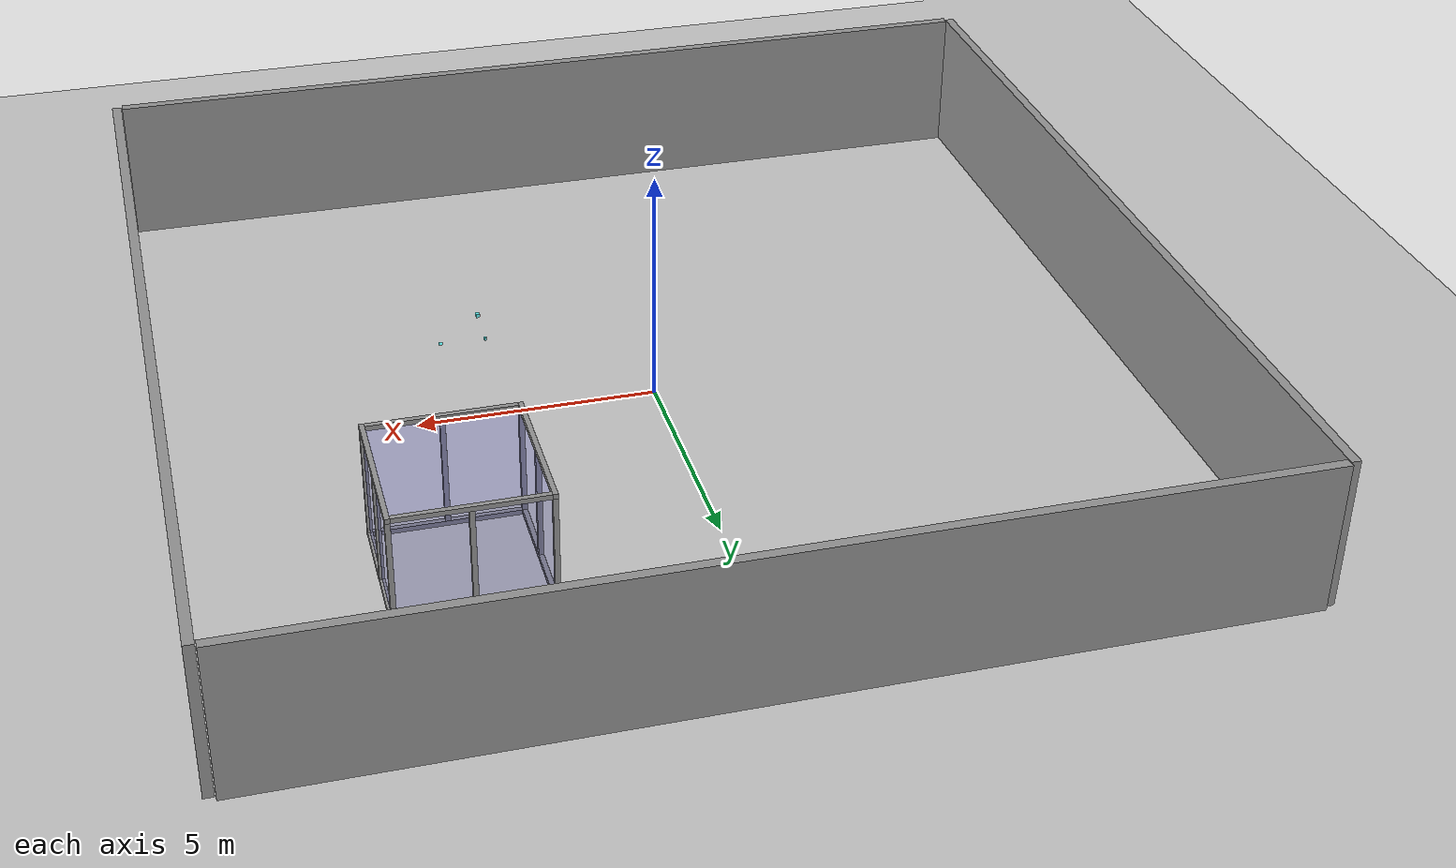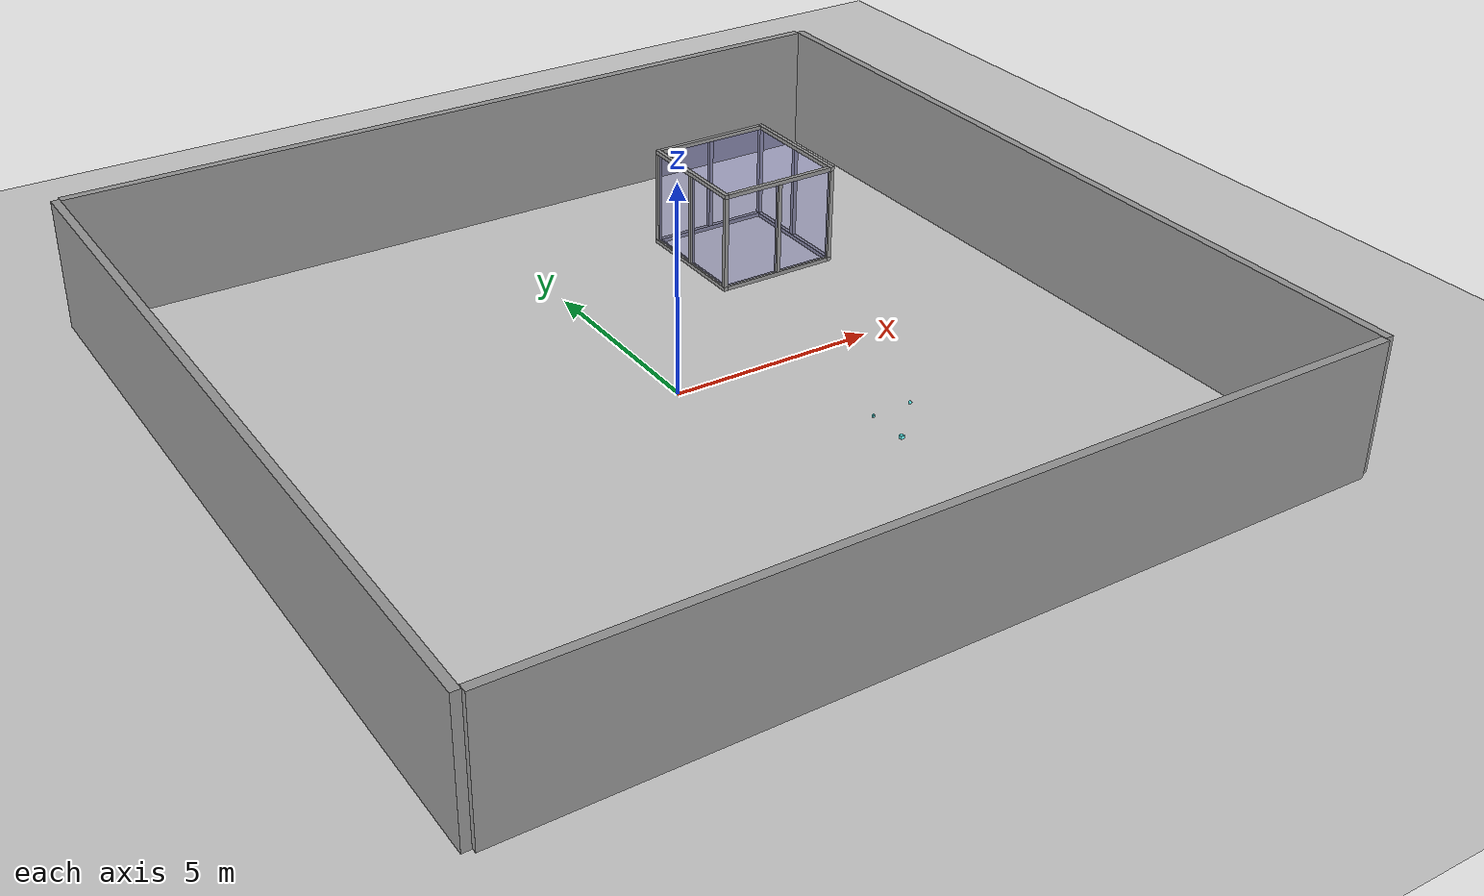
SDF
<sdf version="1.6">
 <world name="default">
  <light name="sun" type="directional">
   <pose>0 0 10 0 -0 0</pose>
   <diffuse>0.8 0.8 0.8 1</diffuse>
   <specular>0.1 0.1 0.1 1</specular>
   <attenuation>
    <range>1000</range>
    <constant>0.9</constant>
    <linear>0.01</linear>
    <quadratic>0.001</quadratic>
   </attenuation>
   <direction>-0.5 0.5 -1</direction>
  </light>
  <model name="ground_plane">
   <static>1</static>
   <link name="link">
    <collision name="collision">
     <geometry><plane><normal>0 0 1</normal><size>100 100</size></plane></geometry>
     <surface><friction><ode><mu>100</mu><mu2>50</mu2></ode></friction></surface>
    </collision>
    <visual name="visual">
     <cast_shadows>0</cast_shadows>
     <geometry><plane><normal>0 0 1</normal><size>100 100</size></plane></geometry>
     <material>
      <script><uri>file://media/materials/scripts/gazebo.material</uri><name>Gazebo/Grey</name></script>
     </material>
    </visual>
   </link>
  </model>
  <gravity>0 0 -9.8</gravity>
  <magnetic_field>6e-06 2.3e-05 -4.2e-05</magnetic_field>
  <atmosphere type="adiabatic"/>
  <physics name="default_physics" default="0" type="ode">
   <max_step_size>0.001</max_step_size>
   <real_time_factor>1</real_time_factor>
   <real_time_update_rate>1000</real_time_update_rate>
  </physics>
  <scene><ambient>0.4 0.4 0.4 1</ambient><background>0.7 0.7 0.7 1</background><shadows>1</shadows></scene>
  <spherical_coordinates>
   <surface_model>EARTH_WGS84</surface_model>
   <latitude_deg>0</latitude_deg>
   <longitude_deg>0</longitude_deg>
   <elevation>0</elevation>
   <heading_deg>0</heading_deg>
  </spherical_coordinates>
  <model name="big_grey_wall_0">
   <static>1</static>
   <link name="link">
    <pose>0 0 1.4 0 -0 0</pose>
    <collision name="collision"><geometry><box><size>20 0.2 3.5</size></box></geometry></collision>
    <visual name="visual">
     <cast_shadows>0</cast_shadows>
     <geometry><box><size>20 0.2 3.5</size></box></geometry>
     <material>
      <script>
       <uri>model://grey_wall/materials/scripts</uri>
       <uri>model://grey_wall/materials/textures</uri>
       <name>vrc/grey_wall</name>
      </script>
     </material>
    </visual>
   </link>
   <pose>0 -10 0 0 -0 0</pose>
  </model>
  <model name="big_grey_wall_1">
   <static>1</static>
   <link name="link">
    <pose>0 0 1.4 0 -0 0</pose>
    <collision name="collision"><geometry><box><size>20 0.2 3.5</size></box></geometry></collision>
    <visual name="visual">
     <cast_shadows>0</cast_shadows>
     <geometry><box><size>20 0.2 3.5</size></box></geometry>
     <material>
      <script>
       <uri>model://grey_wall/materials/scripts</uri>
       <uri>model://grey_wall/materials/textures</uri>
       <name>vrc/grey_wall</name>
      </script>
     </material>
    </visual>
   </link>
   <pose>-10.11 0 0 0 -0 1.5707</pose>
  </model>
  <model name="big_grey_wall_2">
   <static>1</static>
   <link name="link">
    <pose>0 0 1.4 0 -0 0</pose>
    <collision name="collision"><geometry><box><size>20 0.2 3.5</size></box></geometry></collision>
    <visual name="visual">
     <cast_shadows>0</cast_shadows>
     <geometry><box><size>20 0.2 3.5</size></box></geometry>
     <material>
      <script>
       <uri>model://grey_wall/materials/scripts</uri>
       <uri>model://grey_wall/materials/textures</uri>
       <name>vrc/grey_wall</name>
      </script>
     </material>
    </visual>
   </link>
   <pose>0 10 0 0 -0 0</pose>
  </model>
  <model name="big_grey_wall_3">
   <static>1</static>
   <link name="link">
    <pose>0 0 1.4 0 -0 0</pose>
    <collision name="collision"><geometry><box><size>20 0.2 3.5</size></box></geometry></collision>
    <visual name="visual">
     <cast_shadows>0</cast_shadows>
     <geometry><box><size>20 0.2 3.5</size></box></geometry>
     <material>
      <script>
       <uri>model://grey_wall/materials/scripts</uri>
       <uri>model://grey_wall/materials/textures</uri>
       <name>vrc/grey_wall</name>
      </script>
     </material>
    </visual>
   </link>
   <pose>10.12 0 0 0 -0 1.5707</pose>
  </model>
  <model name="cage_1">
   <link name="link">
    <pose>0 -0 1.25 0 -0 0</pose>
    <inertial>
     <inertia><ixx>1</ixx><ixy>0</ixy><ixz>0</ixz><iyy>1</iyy><iyz>0</iyz><izz>1</izz></inertia>
     <mass>1</mass>
    </inertial>
    <visual name="visual">
     <geometry><box><size>3 3 2.3</size></box></geometry>
     <material>
      <script><name>Gazebo/Grey</name><uri>file://media/materials/scripts/gazebo.material</uri></script>
      <ambient>0.3 0.3 0.8 1</ambient>
      <diffuse>0.7 0.7 0.7 1</diffuse>
      <specular>0.01 0.01 0.01 1</specular>
      <emissive>0 0 0 1</emissive>
      <shader type="vertex"><normal_map>__default__</normal_map></shader>
     </material>
     <transparency>0.75</transparency>
    </visual>
   </link>
   <link name="base_back">
    <pose>-1.5 0 0.05 0 -0 1.5707</pose>
    <inertial>
     <mass>1</mass>
     <inertia>
      <ixx>0.166667</ixx>
      <ixy>0</ixy>
      <ixz>0</ixz>
      <iyy>0.166667</iyy>
      <iyz>0</iyz>
      <izz>0.166667</izz>
     </inertia>
    </inertial>
    <visual name="visual">
     <geometry><box><size>3.1 0.1 0.1</size></box></geometry>
     <material>
      <lighting>1</lighting>
      <script><uri>file://media/materials/scripts/gazebo.material</uri><name>Gazebo/Grey</name></script>
      <ambient>0.25 0.25 0.25 1</ambient>
      <diffuse>0.7 0.7 0.7 1</diffuse>
      <specular>0.01 0.01 0.01 1</specular>
      <emissive>0 0 0 1</emissive>
      <shader type="vertex"><normal_map>__default__</normal_map></shader>
     </material>
    </visual>
    <collision name="collision">
     <geometry><box><size>3.1 0.1 0.1</size></box></geometry>
     <surface>
      <friction>
       <ode><mu>100</mu><mu2>100</mu2><fdir1>0 0 0</fdir1><slip1>0</slip1><slip2>0</slip2></ode>
       <torsional>
        <coefficient>1</coefficient>
        <patch_radius>0</patch_radius>
        <surface_radius>0</surface_radius>
        <use_patch_radius>1</use_patch_radius>
        <ode><slip>0</slip></ode>
       </torsional>
      </friction>
      <bounce><restitution_coefficient>0</restitution_coefficient><threshold>1e+06</threshold></bounce>
      <contact>
       <collide_without_contact>0</collide_without_contact>
       <collide_without_contact_bitmask>1</collide_without_contact_bitmask>
       <collide_bitmask>1</collide_bitmask>
       <ode>
        <soft_cfm>0</soft_cfm>
        <soft_erp>0.2</soft_erp>
        <kp>1e+13</kp>
        <kd>1</kd>
        <max_vel>0.01</max_vel>
        <min_depth>0</min_depth>
       </ode>
       <bullet>
        <split_impulse>1</split_impulse>
        <split_impulse_penetration_threshold>-0.01</split_impulse_penetration_threshold>
        <soft_cfm>0</soft_cfm>
        <soft_erp>0.2</soft_erp>
        <kp>1e+13</kp>
        <kd>1</kd>
       </bullet>
      </contact>
     </surface>
    </collision>
   </link>
   <link name="base_front">
    <pose>1.5 -0 0.05 0 -0 1.5707</pose>
    <inertial>
     <mass>1</mass>
     <inertia>
      <ixx>0.166667</ixx>
      <ixy>0</ixy>
      <ixz>0</ixz>
      <iyy>0.166667</iyy>
      <iyz>0</iyz>
      <izz>0.166667</izz>
     </inertia>
    </inertial>
    <visual name="visual">
     <geometry><box><size>3.1 0.1 0.1</size></box></geometry>
     <material>
      <lighting>1</lighting>
      <script><uri>file://media/materials/scripts/gazebo.material</uri><name>Gazebo/Grey</name></script>
      <ambient>0.25 0.25 0.25 1</ambient>
      <diffuse>0.7 0.7 0.7 1</diffuse>
      <specular>0.01 0.01 0.01 1</specular>
      <emissive>0 0 0 1</emissive>
      <shader type="vertex"><normal_map>__default__</normal_map></shader>
     </material>
    </visual>
    <collision name="collision">
     <geometry><box><size>3.1 0.1 0.1</size></box></geometry>
     <surface>
      <friction>
       <ode><mu>100</mu><mu2>100</mu2><fdir1>0 0 0</fdir1><slip1>0</slip1><slip2>0</slip2></ode>
       <torsional>
        <coefficient>1</coefficient>
        <patch_radius>0</patch_radius>
        <surface_radius>0</surface_radius>
        <use_patch_radius>1</use_patch_radius>
        <ode><slip>0</slip></ode>
       </torsional>
      </friction>
      <bounce><restitution_coefficient>0</restitution_coefficient><threshold>1e+06</threshold></bounce>
      <contact>
       <collide_without_contact>0</collide_without_contact>
       <collide_without_contact_bitmask>1</collide_without_contact_bitmask>
       <collide_bitmask>1</collide_bitmask>
       <ode>
        <soft_cfm>0</soft_cfm>
        <soft_erp>0.2</soft_erp>
        <kp>1e+13</kp>
        <kd>1</kd>
        <max_vel>0.01</max_vel>
        <min_depth>0</min_depth>
       </ode>
       <bullet>
        <split_impulse>1</split_impulse>
        <split_impulse_penetration_threshold>-0.01</split_impulse_penetration_threshold>
        <soft_cfm>0</soft_cfm>
        <soft_erp>0.2</soft_erp>
        <kp>1e+13</kp>
        <kd>1</kd>
       </bullet>
      </contact>
     </surface>
    </collision>
   </link>
   <link name="base_left">
    <pose>0 1.5 0.05 0 -0 0</pose>
    <inertial>
     <mass>1</mass>
     <inertia>
      <ixx>0.166667</ixx>
      <ixy>0</ixy>
      <ixz>0</ixz>
      <iyy>0.166667</iyy>
      <iyz>0</iyz>
      <izz>0.166667</izz>
     </inertia>
    </inertial>
    <visual name="visual">
     <geometry><box><size>2.9 0.1 0.1</size></box></geometry>
     <material>
      <lighting>1</lighting>
      <script><uri>file://media/materials/scripts/gazebo.material</uri><name>Gazebo/Grey</name></script>
      <ambient>0.25 0.25 0.25 1</ambient>
      <diffuse>0.7 0.7 0.7 1</diffuse>
      <specular>0.01 0.01 0.01 1</specular>
      <emissive>0 0 0 1</emissive>
      <shader type="vertex"><normal_map>__default__</normal_map></shader>
     </material>
    </visual>
    <collision name="collision">
     <geometry><box><size>3.1 0.1 0.1</size></box></geometry>
     <surface>
      <friction>
       <ode><mu>100</mu><mu2>100</mu2><fdir1>0 0 0</fdir1><slip1>0</slip1><slip2>0</slip2></ode>
       <torsional>
        <coefficient>1</coefficient>
        <patch_radius>0</patch_radius>
        <surface_radius>0</surface_radius>
        <use_patch_radius>1</use_patch_radius>
        <ode><slip>0</slip></ode>
       </torsional>
      </friction>
      <bounce><restitution_coefficient>0</restitution_coefficient><threshold>1e+06</threshold></bounce>
      <contact>
       <collide_without_contact>0</collide_without_contact>
       <collide_without_contact_bitmask>1</collide_without_contact_bitmask>
       <collide_bitmask>1</collide_bitmask>
       <ode>
        <soft_cfm>0</soft_cfm>
        <soft_erp>0.2</soft_erp>
        <kp>1e+13</kp>
        <kd>1</kd>
        <max_vel>0.01</max_vel>
        <min_depth>0</min_depth>
       </ode>
       <bullet>
        <split_impulse>1</split_impulse>
        <split_impulse_penetration_threshold>-0.01</split_impulse_penetration_threshold>
        <soft_cfm>0</soft_cfm>
        <soft_erp>0.2</soft_erp>
        <kp>1e+13</kp>
        <kd>1</kd>
       </bullet>
      </contact>
     </surface>
    </collision>
   </link>
   <link name="base_right">
    <pose>-0 -1.5 0.05 0 -0 0</pose>
    <inertial>
     <mass>1</mass>
     <inertia>
      <ixx>0.166667</ixx>
      <ixy>0</ixy>
      <ixz>0</ixz>
      <iyy>0.166667</iyy>
      <iyz>0</iyz>
      <izz>0.166667</izz>
     </inertia>
    </inertial>
    <visual name="visual">
     <geometry><box><size>2.9 0.1 0.1</size></box></geometry>
     <material>
      <lighting>1</lighting>
      <script><uri>file://media/materials/scripts/gazebo.material</uri><name>Gazebo/Grey</name></script>
      <ambient>0.25 0.25 0.25 1</ambient>
      <diffuse>0.7 0.7 0.7 1</diffuse>
      <specular>0.01 0.01 0.01 1</specular>
      <emissive>0 0 0 1</emissive>
      <shader type="vertex"><normal_map>__default__</normal_map></shader>
     </material>
    </visual>
    <collision name="collision">
     <geometry><box><size>3.1 0.1 0.1</size></box></geometry>
     <surface>
      <friction>
       <ode><mu>100</mu><mu2>100</mu2><fdir1>0 0 0</fdir1><slip1>0</slip1><slip2>0</slip2></ode>
       <torsional>
        <coefficient>1</coefficient>
        <patch_radius>0</patch_radius>
        <surface_radius>0</surface_radius>
        <use_patch_radius>1</use_patch_radius>
        <ode><slip>0</slip></ode>
       </torsional>
      </friction>
      <bounce><restitution_coefficient>0</restitution_coefficient><threshold>1e+06</threshold></bounce>
      <contact>
       <collide_without_contact>0</collide_without_contact>
       <collide_without_contact_bitmask>1</collide_without_contact_bitmask>
       <collide_bitmask>1</collide_bitmask>
       <ode>
        <soft_cfm>0</soft_cfm>
        <soft_erp>0.2</soft_erp>
        <kp>1e+13</kp>
        <kd>1</kd>
        <max_vel>0.01</max_vel>
        <min_depth>0</min_depth>
       </ode>
       <bullet>
        <split_impulse>1</split_impulse>
        <split_impulse_penetration_threshold>-0.01</split_impulse_penetration_threshold>
        <soft_cfm>0</soft_cfm>
        <soft_erp>0.2</soft_erp>
        <kp>1e+13</kp>
        <kd>1</kd>
       </bullet>
      </contact>
     </surface>
    </collision>
   </link>
   <link name="column_0">
    <pose>1.5 -1.5 1.25 0 -0 0</pose>
    <inertial>
     <mass>1</mass>
     <inertia>
      <ixx>0.166667</ixx>
      <ixy>0</ixy>
      <ixz>0</ixz>
      <iyy>0.166667</iyy>
      <iyz>0</iyz>
      <izz>0.166667</izz>
     </inertia>
    </inertial>
    <visual name="visual">
     <geometry><box><size>0.1 0.1 2.3</size></box></geometry>
     <material>
      <lighting>1</lighting>
      <script><uri>file://media/materials/scripts/gazebo.material</uri><name>Gazebo/Grey</name></script>
      <ambient>0.3 0.3 0.3 1</ambient>
      <diffuse>0.25 0.25 0.25 1</diffuse>
      <specular>0.01 0.01 0.01 1</specular>
      <emissive>0 0 0 1</emissive>
      <shader type="vertex"><normal_map>__default__</normal_map></shader>
     </material>
    </visual>
    <collision name="collision">
     <geometry><box><size>0.1 0.1 2.3</size></box></geometry>
     <surface>
      <friction>
       <ode><mu>100</mu><mu2>100</mu2><fdir1>0 0 0</fdir1><slip1>0</slip1><slip2>0</slip2></ode>
       <torsional>
        <coefficient>1</coefficient>
        <patch_radius>0</patch_radius>
        <surface_radius>0</surface_radius>
        <use_patch_radius>1</use_patch_radius>
        <ode><slip>0</slip></ode>
       </torsional>
      </friction>
      <bounce><restitution_coefficient>0</restitution_coefficient><threshold>1e+06</threshold></bounce>
      <contact>
       <collide_without_contact>0</collide_without_contact>
       <collide_without_contact_bitmask>1</collide_without_contact_bitmask>
       <collide_bitmask>1</collide_bitmask>
       <ode>
        <soft_cfm>0</soft_cfm>
        <soft_erp>0.2</soft_erp>
        <kp>1e+13</kp>
        <kd>1</kd>
        <max_vel>0.01</max_vel>
        <min_depth>0</min_depth>
       </ode>
       <bullet>
        <split_impulse>1</split_impulse>
        <split_impulse_penetration_threshold>-0.01</split_impulse_penetration_threshold>
        <soft_cfm>0</soft_cfm>
        <soft_erp>0.2</soft_erp>
        <kp>1e+13</kp>
        <kd>1</kd>
       </bullet>
      </contact>
     </surface>
    </collision>
   </link>
   <link name="column_1">
    <pose>1.5 0 1.25 0 -0 0</pose>
    <inertial>
     <mass>1</mass>
     <inertia>
      <ixx>0.166667</ixx>
      <ixy>0</ixy>
      <ixz>0</ixz>
      <iyy>0.166667</iyy>
      <iyz>0</iyz>
      <izz>0.166667</izz>
     </inertia>
    </inertial>
    <visual name="visual">
     <geometry><box><size>0.1 0.1 2.3</size></box></geometry>
     <material>
      <lighting>1</lighting>
      <script><uri>file://media/materials/scripts/gazebo.material</uri><name>Gazebo/Grey</name></script>
      <ambient>0.3 0.3 0.3 1</ambient>
      <diffuse>0.25 0.25 0.25 1</diffuse>
      <specular>0.01 0.01 0.01 1</specular>
      <emissive>0 0 0 1</emissive>
      <shader type="vertex"><normal_map>__default__</normal_map></shader>
     </material>
    </visual>
    <collision name="collision">
     <geometry><box><size>0.1 0.1 2.3</size></box></geometry>
     <surface>
      <friction>
       <ode><mu>100</mu><mu2>100</mu2><fdir1>0 0 0</fdir1><slip1>0</slip1><slip2>0</slip2></ode>
       <torsional>
        <coefficient>1</coefficient>
        <patch_radius>0</patch_radius>
        <surface_radius>0</surface_radius>
        <use_patch_radius>1</use_patch_radius>
        <ode><slip>0</slip></ode>
       </torsional>
      </friction>
      <bounce><restitution_coefficient>0</restitution_coefficient><threshold>1e+06</threshold></bounce>
      <contact>
       <collide_without_contact>0</collide_without_contact>
       <collide_without_contact_bitmask>1</collide_without_contact_bitmask>
       <collide_bitmask>1</collide_bitmask>
       <ode>
        <soft_cfm>0</soft_cfm>
        <soft_erp>0.2</soft_erp>
        <kp>1e+13</kp>
        <kd>1</kd>
        <max_vel>0.01</max_vel>
        <min_depth>0</min_depth>
       </ode>
       <bullet>
        <split_impulse>1</split_impulse>
        <split_impulse_penetration_threshold>-0.01</split_impulse_penetration_threshold>
        <soft_cfm>0</soft_cfm>
        <soft_erp>0.2</soft_erp>
        <kp>1e+13</kp>
        <kd>1</kd>
       </bullet>
      </contact>
     </surface>
    </collision>
   </link>
   <link name="column_2">
    <pose>1.5 1.5 1.25 0 -0 0</pose>
    <inertial>
     <mass>1</mass>
     <inertia>
      <ixx>0.166667</ixx>
      <ixy>0</ixy>
      <ixz>0</ixz>
      <iyy>0.166667</iyy>
      <iyz>0</iyz>
      <izz>0.166667</izz>
     </inertia>
    </inertial>
    <visual name="visual">
     <geometry><box><size>0.1 0.1 2.3</size></box></geometry>
     <material>
      <lighting>1</lighting>
      <script><uri>file://media/materials/scripts/gazebo.material</uri><name>Gazebo/Grey</name></script>
      <ambient>0.3 0.3 0.3 1</ambient>
      <diffuse>0.25 0.25 0.25 1</diffuse>
      <specular>0.01 0.01 0.01 1</specular>
      <emissive>0 0 0 1</emissive>
      <shader type="vertex"><normal_map>__default__</normal_map></shader>
     </material>
    </visual>
    <collision name="collision">
     <geometry><box><size>0.1 0.1 2.3</size></box></geometry>
     <surface>
      <friction>
       <ode><mu>100</mu><mu2>100</mu2><fdir1>0 0 0</fdir1><slip1>0</slip1><slip2>0</slip2></ode>
       <torsional>
        <coefficient>1</coefficient>
        <patch_radius>0</patch_radius>
        <surface_radius>0</surface_radius>
        <use_patch_radius>1</use_patch_radius>
        <ode><slip>0</slip></ode>
       </torsional>
      </friction>
      <bounce><restitution_coefficient>0</restitution_coefficient><threshold>1e+06</threshold></bounce>
      <contact>
       <collide_without_contact>0</collide_without_contact>
       <collide_without_contact_bitmask>1</collide_without_contact_bitmask>
       <collide_bitmask>1</collide_bitmask>
       <ode>
        <soft_cfm>0</soft_cfm>
        <soft_erp>0.2</soft_erp>
        <kp>1e+13</kp>
        <kd>1</kd>
        <max_vel>0.01</max_vel>
        <min_depth>0</min_depth>
       </ode>
       <bullet>
        <split_impulse>1</split_impulse>
        <split_impulse_penetration_threshold>-0.01</split_impulse_penetration_threshold>
        <soft_cfm>0</soft_cfm>
        <soft_erp>0.2</soft_erp>
        <kp>1e+13</kp>
        <kd>1</kd>
       </bullet>
      </contact>
     </surface>
    </collision>
   </link>
   <link name="column_3">
    <pose>-0 1.5 1.25 0 -0 0</pose>
    <inertial>
     <mass>1</mass>
     <inertia>
      <ixx>0.166667</ixx>
      <ixy>0</ixy>
      <ixz>0</ixz>
      <iyy>0.166667</iyy>
      <iyz>0</iyz>
      <izz>0.166667</izz>
     </inertia>
    </inertial>
    <visual name="visual">
     <geometry><box><size>0.1 0.1 2.3</size></box></geometry>
     <material>
      <lighting>1</lighting>
      <script><uri>file://media/materials/scripts/gazebo.material</uri><name>Gazebo/Grey</name></script>
      <ambient>0.3 0.3 0.3 1</ambient>
      <diffuse>0.25 0.25 0.25 1</diffuse>
      <specular>0.01 0.01 0.01 1</specular>
      <emissive>0 0 0 1</emissive>
      <shader type="vertex"><normal_map>__default__</normal_map></shader>
     </material>
    </visual>
    <collision name="collision">
     <geometry><box><size>0.1 0.1 2.3</size></box></geometry>
     <surface>
      <friction>
       <ode><mu>100</mu><mu2>100</mu2><fdir1>0 0 0</fdir1><slip1>0</slip1><slip2>0</slip2></ode>
       <torsional>
        <coefficient>1</coefficient>
        <patch_radius>0</patch_radius>
        <surface_radius>0</surface_radius>
        <use_patch_radius>1</use_patch_radius>
        <ode><slip>0</slip></ode>
       </torsional>
      </friction>
      <bounce><restitution_coefficient>0</restitution_coefficient><threshold>1e+06</threshold></bounce>
      <contact>
       <collide_without_contact>0</collide_without_contact>
       <collide_without_contact_bitmask>1</collide_without_contact_bitmask>
       <collide_bitmask>1</collide_bitmask>
       <ode>
        <soft_cfm>0</soft_cfm>
        <soft_erp>0.2</soft_erp>
        <kp>1e+13</kp>
        <kd>1</kd>
        <max_vel>0.01</max_vel>
        <min_depth>0</min_depth>
       </ode>
       <bullet>
        <split_impulse>1</split_impulse>
        <split_impulse_penetration_threshold>-0.01</split_impulse_penetration_threshold>
        <soft_cfm>0</soft_cfm>
        <soft_erp>0.2</soft_erp>
        <kp>1e+13</kp>
        <kd>1</kd>
       </bullet>
      </contact>
     </surface>
    </collision>
   </link>
   <link name="column_4">
    <pose>-1.5 1.5 1.25 0 -0 0</pose>
    <inertial>
     <mass>1</mass>
     <inertia>
      <ixx>0.166667</ixx>
      <ixy>0</ixy>
      <ixz>0</ixz>
      <iyy>0.166667</iyy>
      <iyz>0</iyz>
      <izz>0.166667</izz>
     </inertia>
    </inertial>
    <visual name="visual">
     <geometry><box><size>0.1 0.1 2.3</size></box></geometry>
     <material>
      <lighting>1</lighting>
      <script><uri>file://media/materials/scripts/gazebo.material</uri><name>Gazebo/Grey</name></script>
      <ambient>0.3 0.3 0.3 1</ambient>
      <diffuse>0.25 0.25 0.25 1</diffuse>
      <specular>0.01 0.01 0.01 1</specular>
      <emissive>0 0 0 1</emissive>
      <shader type="vertex"><normal_map>__default__</normal_map></shader>
     </material>
    </visual>
    <collision name="collision">
     <geometry><box><size>0.1 0.1 2.3</size></box></geometry>
     <surface>
      <friction>
       <ode><mu>100</mu><mu2>100</mu2><fdir1>0 0 0</fdir1><slip1>0</slip1><slip2>0</slip2></ode>
       <torsional>
        <coefficient>1</coefficient>
        <patch_radius>0</patch_radius>
        <surface_radius>0</surface_radius>
        <use_patch_radius>1</use_patch_radius>
        <ode><slip>0</slip></ode>
       </torsional>
      </friction>
      <bounce><restitution_coefficient>0</restitution_coefficient><threshold>1e+06</threshold></bounce>
      <contact>
       <collide_without_contact>0</collide_without_contact>
       <collide_without_contact_bitmask>1</collide_without_contact_bitmask>
       <collide_bitmask>1</collide_bitmask>
       <ode>
        <soft_cfm>0</soft_cfm>
        <soft_erp>0.2</soft_erp>
        <kp>1e+13</kp>
        <kd>1</kd>
        <max_vel>0.01</max_vel>
        <min_depth>0</min_depth>
       </ode>
       <bullet>
        <split_impulse>1</split_impulse>
        <split_impulse_penetration_threshold>-0.01</split_impulse_penetration_threshold>
        <soft_cfm>0</soft_cfm>
        <soft_erp>0.2</soft_erp>
        <kp>1e+13</kp>
        <kd>1</kd>
       </bullet>
      </contact>
     </surface>
    </collision>
   </link>
   <link name="column_5">
    <pose>-1.5 0 1.25 0 -0 0</pose>
    <inertial>
     <mass>1</mass>
     <inertia>
      <ixx>0.166667</ixx>
      <ixy>0</ixy>
      <ixz>0</ixz>
      <iyy>0.166667</iyy>
      <iyz>0</iyz>
      <izz>0.166667</izz>
     </inertia>
    </inertial>
    <visual name="visual">
     <geometry><box><size>0.1 0.1 2.3</size></box></geometry>
     <material>
      <lighting>1</lighting>
      <script><uri>file://media/materials/scripts/gazebo.material</uri><name>Gazebo/Grey</name></script>
      <ambient>0.3 0.3 0.3 1</ambient>
      <diffuse>0.25 0.25 0.25 1</diffuse>
      <specular>0.01 0.01 0.01 1</specular>
      <emissive>0 0 0 1</emissive>
      <shader type="vertex"><normal_map>__default__</normal_map></shader>
     </material>
    </visual>
    <collision name="collision">
     <geometry><box><size>0.1 0.1 2.3</size></box></geometry>
     <surface>
      <friction>
       <ode><mu>100</mu><mu2>100</mu2><fdir1>0 0 0</fdir1><slip1>0</slip1><slip2>0</slip2></ode>
       <torsional>
        <coefficient>1</coefficient>
        <patch_radius>0</patch_radius>
        <surface_radius>0</surface_radius>
        <use_patch_radius>1</use_patch_radius>
        <ode><slip>0</slip></ode>
       </torsional>
      </friction>
      <bounce><restitution_coefficient>0</restitution_coefficient><threshold>1e+06</threshold></bounce>
      <contact>
       <collide_without_contact>0</collide_without_contact>
       <collide_without_contact_bitmask>1</collide_without_contact_bitmask>
       <collide_bitmask>1</collide_bitmask>
       <ode>
        <soft_cfm>0</soft_cfm>
        <soft_erp>0.2</soft_erp>
        <kp>1e+13</kp>
        <kd>1</kd>
        <max_vel>0.01</max_vel>
        <min_depth>0</min_depth>
       </ode>
       <bullet>
        <split_impulse>1</split_impulse>
        <split_impulse_penetration_threshold>-0.01</split_impulse_penetration_threshold>
        <soft_cfm>0</soft_cfm>
        <soft_erp>0.2</soft_erp>
        <kp>1e+13</kp>
        <kd>1</kd>
       </bullet>
      </contact>
     </surface>
    </collision>
   </link>
   <link name="column_6">
    <pose>-1.5 -1.5 1.25 0 -0 0</pose>
    <inertial>
     <mass>1</mass>
     <inertia>
      <ixx>0.166667</ixx>
      <ixy>0</ixy>
      <ixz>0</ixz>
      <iyy>0.166667</iyy>
      <iyz>0</iyz>
      <izz>0.166667</izz>
     </inertia>
    </inertial>
    <visual name="visual">
     <geometry><box><size>0.1 0.1 2.3</size></box></geometry>
     <material>
      <lighting>1</lighting>
      <script><uri>file://media/materials/scripts/gazebo.material</uri><name>Gazebo/Grey</name></script>
      <ambient>0.3 0.3 0.3 1</ambient>
      <diffuse>0.25 0.25 0.25 1</diffuse>
      <specular>0.01 0.01 0.01 1</specular>
      <emissive>0 0 0 1</emissive>
      <shader type="vertex"><normal_map>__default__</normal_map></shader>
     </material>
    </visual>
    <collision name="collision">
     <geometry><box><size>0.1 0.1 2.3</size></box></geometry>
     <surface>
      <friction>
       <ode><mu>100</mu><mu2>100</mu2><fdir1>0 0 0</fdir1><slip1>0</slip1><slip2>0</slip2></ode>
       <torsional>
        <coefficient>1</coefficient>
        <patch_radius>0</patch_radius>
        <surface_radius>0</surface_radius>
        <use_patch_radius>1</use_patch_radius>
        <ode><slip>0</slip></ode>
       </torsional>
      </friction>
      <bounce><restitution_coefficient>0</restitution_coefficient><threshold>1e+06</threshold></bounce>
      <contact>
       <collide_without_contact>0</collide_without_contact>
       <collide_without_contact_bitmask>1</collide_without_contact_bitmask>
       <collide_bitmask>1</collide_bitmask>
       <ode>
        <soft_cfm>0</soft_cfm>
        <soft_erp>0.2</soft_erp>
        <kp>1e+13</kp>
        <kd>1</kd>
        <max_vel>0.01</max_vel>
        <min_depth>0</min_depth>
       </ode>
       <bullet>
        <split_impulse>1</split_impulse>
        <split_impulse_penetration_threshold>-0.01</split_impulse_penetration_threshold>
        <soft_cfm>0</soft_cfm>
        <soft_erp>0.2</soft_erp>
        <kp>1e+13</kp>
        <kd>1</kd>
       </bullet>
      </contact>
     </surface>
    </collision>
   </link>
   <link name="column_7">
    <pose>-0 -1.5 1.25 0 -0 0</pose>
    <inertial>
     <mass>1</mass>
     <inertia>
      <ixx>0.166667</ixx>
      <ixy>0</ixy>
      <ixz>0</ixz>
      <iyy>0.166667</iyy>
      <iyz>0</iyz>
      <izz>0.166667</izz>
     </inertia>
    </inertial>
    <visual name="visual">
     <geometry><box><size>0.1 0.1 2.3</size></box></geometry>
     <material>
      <lighting>1</lighting>
      <script><uri>file://media/materials/scripts/gazebo.material</uri><name>Gazebo/Grey</name></script>
      <ambient>0.3 0.3 0.3 1</ambient>
      <diffuse>0.25 0.25 0.25 1</diffuse>
      <specular>0.01 0.01 0.01 1</specular>
      <emissive>0 0 0 1</emissive>
      <shader type="vertex"><normal_map>__default__</normal_map></shader>
     </material>
    </visual>
    <collision name="collision">
     <geometry><box><size>0.1 0.1 2.3</size></box></geometry>
     <surface>
      <friction>
       <ode><mu>100</mu><mu2>100</mu2><fdir1>0 0 0</fdir1><slip1>0</slip1><slip2>0</slip2></ode>
       <torsional>
        <coefficient>1</coefficient>
        <patch_radius>0</patch_radius>
        <surface_radius>0</surface_radius>
        <use_patch_radius>1</use_patch_radius>
        <ode><slip>0</slip></ode>
       </torsional>
      </friction>
      <bounce><restitution_coefficient>0</restitution_coefficient><threshold>1e+06</threshold></bounce>
      <contact>
       <collide_without_contact>0</collide_without_contact>
       <collide_without_contact_bitmask>1</collide_without_contact_bitmask>
       <collide_bitmask>1</collide_bitmask>
       <ode>
        <soft_cfm>0</soft_cfm>
        <soft_erp>0.2</soft_erp>
        <kp>1e+13</kp>
        <kd>1</kd>
        <max_vel>0.01</max_vel>
        <min_depth>0</min_depth>
       </ode>
       <bullet>
        <split_impulse>1</split_impulse>
        <split_impulse_penetration_threshold>-0.01</split_impulse_penetration_threshold>
        <soft_cfm>0</soft_cfm>
        <soft_erp>0.2</soft_erp>
        <kp>1e+13</kp>
        <kd>1</kd>
       </bullet>
      </contact>
     </surface>
    </collision>
   </link>
   <link name="top_back">
    <pose>-1.5 0 2.45 0 -0 1.5707</pose>
    <inertial>
     <mass>1</mass>
     <inertia>
      <ixx>0.166667</ixx>
      <ixy>0</ixy>
      <ixz>0</ixz>
      <iyy>0.166667</iyy>
      <iyz>0</iyz>
      <izz>0.166667</izz>
     </inertia>
    </inertial>
    <visual name="visual">
     <geometry><box><size>3.1 0.1 0.1</size></box></geometry>
     <material>
      <lighting>1</lighting>
      <script><uri>file://media/materials/scripts/gazebo.material</uri><name>Gazebo/Grey</name></script>
      <ambient>0.25 0.25 0.25 1</ambient>
      <diffuse>0.7 0.7 0.7 1</diffuse>
      <specular>0.01 0.01 0.01 1</specular>
      <emissive>0 0 0 1</emissive>
      <shader type="vertex"><normal_map>__default__</normal_map></shader>
     </material>
    </visual>
    <collision name="collision">
     <geometry><box><size>3.1 0.1 0.1</size></box></geometry>
     <surface>
      <friction>
       <ode><mu>100</mu><mu2>100</mu2><fdir1>0 0 0</fdir1><slip1>0</slip1><slip2>0</slip2></ode>
       <torsional>
        <coefficient>1</coefficient>
        <patch_radius>0</patch_radius>
        <surface_radius>0</surface_radius>
        <use_patch_radius>1</use_patch_radius>
        <ode><slip>0</slip></ode>
       </torsional>
      </friction>
      <bounce><restitution_coefficient>0</restitution_coefficient><threshold>1e+06</threshold></bounce>
      <contact>
       <collide_without_contact>0</collide_without_contact>
       <collide_without_contact_bitmask>1</collide_without_contact_bitmask>
       <collide_bitmask>1</collide_bitmask>
       <ode>
        <soft_cfm>0</soft_cfm>
        <soft_erp>0.2</soft_erp>
        <kp>1e+13</kp>
        <kd>1</kd>
        <max_vel>0.01</max_vel>
        <min_depth>0</min_depth>
       </ode>
       <bullet>
        <split_impulse>1</split_impulse>
        <split_impulse_penetration_threshold>-0.01</split_impulse_penetration_threshold>
        <soft_cfm>0</soft_cfm>
        <soft_erp>0.2</soft_erp>
        <kp>1e+13</kp>
        <kd>1</kd>
       </bullet>
      </contact>
     </surface>
    </collision>
   </link>
   <link name="top_front">
    <pose>1.5 0 2.45 0 -0 1.5707</pose>
    <inertial>
     <mass>1</mass>
     <inertia>
      <ixx>0.166667</ixx>
      <ixy>0</ixy>
      <ixz>0</ixz>
      <iyy>0.166667</iyy>
      <iyz>0</iyz>
      <izz>0.166667</izz>
     </inertia>
    </inertial>
    <visual name="visual">
     <geometry><box><size>3.1 0.1 0.1</size></box></geometry>
     <material>
      <lighting>1</lighting>
      <script><uri>file://media/materials/scripts/gazebo.material</uri><name>Gazebo/Grey</name></script>
      <ambient>0.25 0.25 0.25 1</ambient>
      <diffuse>0.7 0.7 0.7 1</diffuse>
      <specular>0.01 0.01 0.01 1</specular>
      <emissive>0 0 0 1</emissive>
      <shader type="vertex"><normal_map>__default__</normal_map></shader>
     </material>
    </visual>
    <collision name="collision">
     <geometry><box><size>3.1 0.1 0.1</size></box></geometry>
     <surface>
      <friction>
       <ode><mu>100</mu><mu2>100</mu2><fdir1>0 0 0</fdir1><slip1>0</slip1><slip2>0</slip2></ode>
       <torsional>
        <coefficient>1</coefficient>
        <patch_radius>0</patch_radius>
        <surface_radius>0</surface_radius>
        <use_patch_radius>1</use_patch_radius>
        <ode><slip>0</slip></ode>
       </torsional>
      </friction>
      <bounce><restitution_coefficient>0</restitution_coefficient><threshold>1e+06</threshold></bounce>
      <contact>
       <collide_without_contact>0</collide_without_contact>
       <collide_without_contact_bitmask>1</collide_without_contact_bitmask>
       <collide_bitmask>1</collide_bitmask>
       <ode>
        <soft_cfm>0</soft_cfm>
        <soft_erp>0.2</soft_erp>
        <kp>1e+13</kp>
        <kd>1</kd>
        <max_vel>0.01</max_vel>
        <min_depth>0</min_depth>
       </ode>
       <bullet>
        <split_impulse>1</split_impulse>
        <split_impulse_penetration_threshold>-0.01</split_impulse_penetration_threshold>
        <soft_cfm>0</soft_cfm>
        <soft_erp>0.2</soft_erp>
        <kp>1e+13</kp>
        <kd>1</kd>
       </bullet>
      </contact>
     </surface>
    </collision>
   </link>
   <link name="top_left">
    <pose>0 1.5 2.45 0 -0 0</pose>
    <inertial>
     <mass>1</mass>
     <inertia>
      <ixx>0.166667</ixx>
      <ixy>0</ixy>
      <ixz>0</ixz>
      <iyy>0.166667</iyy>
      <iyz>0</iyz>
      <izz>0.166667</izz>
     </inertia>
    </inertial>
    <visual name="visual">
     <geometry><box><size>2.9 0.1 0.1</size></box></geometry>
     <material>
      <lighting>1</lighting>
      <script><uri>file://media/materials/scripts/gazebo.material</uri><name>Gazebo/Grey</name></script>
      <ambient>0.25 0.25 0.25 1</ambient>
      <diffuse>0.7 0.7 0.7 1</diffuse>
      <specular>0.01 0.01 0.01 1</specular>
      <emissive>0 0 0 1</emissive>
      <shader type="vertex"><normal_map>__default__</normal_map></shader>
     </material>
    </visual>
    <collision name="collision">
     <geometry><box><size>3.1 0.1 0.1</size></box></geometry>
     <surface>
      <friction>
       <ode><mu>100</mu><mu2>100</mu2><fdir1>0 0 0</fdir1><slip1>0</slip1><slip2>0</slip2></ode>
       <torsional>
        <coefficient>1</coefficient>
        <patch_radius>0</patch_radius>
        <surface_radius>0</surface_radius>
        <use_patch_radius>1</use_patch_radius>
        <ode><slip>0</slip></ode>
       </torsional>
      </friction>
      <bounce><restitution_coefficient>0</restitution_coefficient><threshold>1e+06</threshold></bounce>
      <contact>
       <collide_without_contact>0</collide_without_contact>
       <collide_without_contact_bitmask>1</collide_without_contact_bitmask>
       <collide_bitmask>1</collide_bitmask>
       <ode>
        <soft_cfm>0</soft_cfm>
        <soft_erp>0.2</soft_erp>
        <kp>1e+13</kp>
        <kd>1</kd>
        <max_vel>0.01</max_vel>
        <min_depth>0</min_depth>
       </ode>
       <bullet>
        <split_impulse>1</split_impulse>
        <split_impulse_penetration_threshold>-0.01</split_impulse_penetration_threshold>
        <soft_cfm>0</soft_cfm>
        <soft_erp>0.2</soft_erp>
        <kp>1e+13</kp>
        <kd>1</kd>
       </bullet>
      </contact>
     </surface>
    </collision>
   </link>
   <link name="top_right">
    <pose>-0 -1.5 2.45 0 -0 0</pose>
    <inertial>
     <mass>1</mass>
     <inertia>
      <ixx>0.166667</ixx>
      <ixy>0</ixy>
      <ixz>0</ixz>
      <iyy>0.166667</iyy>
      <iyz>0</iyz>
      <izz>0.166667</izz>
     </inertia>
    </inertial>
    <visual name="visual">
     <geometry><box><size>2.9 0.1 0.1</size></box></geometry>
     <material>
      <lighting>1</lighting>
      <script><uri>file://media/materials/scripts/gazebo.material</uri><name>Gazebo/Grey</name></script>
      <ambient>0.25 0.25 0.25 1</ambient>
      <diffuse>0.7 0.7 0.7 1</diffuse>
      <specular>0.01 0.01 0.01 1</specular>
      <emissive>0 0 0 1</emissive>
      <shader type="vertex"><normal_map>__default__</normal_map></shader>
     </material>
    </visual>
    <collision name="collision">
     <geometry><box><size>3.1 0.1 0.1</size></box></geometry>
     <surface>
      <friction>
       <ode><mu>100</mu><mu2>100</mu2><fdir1>0 0 0</fdir1><slip1>0</slip1><slip2>0</slip2></ode>
       <torsional>
        <coefficient>1</coefficient>
        <patch_radius>0</patch_radius>
        <surface_radius>0</surface_radius>
        <use_patch_radius>1</use_patch_radius>
        <ode><slip>0</slip></ode>
       </torsional>
      </friction>
      <bounce><restitution_coefficient>0</restitution_coefficient><threshold>1e+06</threshold></bounce>
      <contact>
       <collide_without_contact>0</collide_without_contact>
       <collide_without_contact_bitmask>1</collide_without_contact_bitmask>
       <collide_bitmask>1</collide_bitmask>
       <ode>
        <soft_cfm>0</soft_cfm>
        <soft_erp>0.2</soft_erp>
        <kp>1e+13</kp>
        <kd>1</kd>
        <max_vel>0.01</max_vel>
        <min_depth>0</min_depth>
       </ode>
       <bullet>
        <split_impulse>1</split_impulse>
        <split_impulse_penetration_threshold>-0.01</split_impulse_penetration_threshold>
        <soft_cfm>0</soft_cfm>
        <soft_erp>0.2</soft_erp>
        <kp>1e+13</kp>
        <kd>1</kd>
       </bullet>
      </contact>
     </surface>
    </collision>
   </link>
   <joint name="link_JOINT_0" type="fixed">
    <parent>link</parent>
    <child>top_left</child>
    <physics>
     <ode><limit><cfm>0</cfm><erp>0.2</erp></limit><suspension><cfm>0</cfm><erp>0.2</erp></suspension></ode>
    </physics>
   </joint>
   <joint name="link_JOINT_10" type="fixed">
    <parent>link</parent>
    <child>column_2</child>
    <physics>
     <ode><limit><cfm>0</cfm><erp>0.2</erp></limit><suspension><cfm>0</cfm><erp>0.2</erp></suspension></ode>
    </physics>
   </joint>
   <joint name="link_JOINT_12" type="fixed">
    <parent>link</parent>
    <child>column_3</child>
    <physics>
     <ode><limit><cfm>0</cfm><erp>0.2</erp></limit><suspension><cfm>0</cfm><erp>0.2</erp></suspension></ode>
    </physics>
   </joint>
   <joint name="link_JOINT_13" type="fixed">
    <parent>link</parent>
    <child>column_4</child>
    <physics>
     <ode><limit><cfm>0</cfm><erp>0.2</erp></limit><suspension><cfm>0</cfm><erp>0.2</erp></suspension></ode>
    </physics>
   </joint>
   <joint name="link_JOINT_14" type="fixed">
    <parent>link</parent>
    <child>column_5</child>
    <physics>
     <ode><limit><cfm>0</cfm><erp>0.2</erp></limit><suspension><cfm>0</cfm><erp>0.2</erp></suspension></ode>
    </physics>
   </joint>
   <joint name="link_JOINT_15" type="fixed">
    <parent>link</parent>
    <child>column_6</child>
    <physics>
     <ode><limit><cfm>0</cfm><erp>0.2</erp></limit><suspension><cfm>0</cfm><erp>0.2</erp></suspension></ode>
    </physics>
   </joint>
   <joint name="link_JOINT_16" type="fixed">
    <parent>link</parent>
    <child>column_7</child>
    <physics>
     <ode><limit><cfm>0</cfm><erp>0.2</erp></limit><suspension><cfm>0</cfm><erp>0.2</erp></suspension></ode>
    </physics>
   </joint>
   <joint name="link_JOINT_17" type="fixed">
    <parent>link</parent>
    <child>base_front</child>
    <physics>
     <ode><limit><cfm>0</cfm><erp>0.2</erp></limit><suspension><cfm>0</cfm><erp>0.2</erp></suspension></ode>
    </physics>
   </joint>
   <joint name="link_JOINT_18" type="fixed">
    <parent>link</parent>
    <child>base_left</child>
    <physics>
     <ode><limit><cfm>0</cfm><erp>0.2</erp></limit><suspension><cfm>0</cfm><erp>0.2</erp></suspension></ode>
    </physics>
   </joint>
   <joint name="link_JOINT_19" type="fixed">
    <parent>link</parent>
    <child>base_back</child>
    <physics>
     <ode><limit><cfm>0</cfm><erp>0.2</erp></limit><suspension><cfm>0</cfm><erp>0.2</erp></suspension></ode>
    </physics>
   </joint>
   <joint name="link_JOINT_20" type="fixed">
    <parent>link</parent>
    <child>base_right</child>
    <physics>
     <ode><limit><cfm>0</cfm><erp>0.2</erp></limit><suspension><cfm>0</cfm><erp>0.2</erp></suspension></ode>
    </physics>
   </joint>
   <joint name="link_JOINT_21" type="fixed">
    <parent>link</parent>
    <child>top_front</child>
    <physics>
     <ode><limit><cfm>0</cfm><erp>0.2</erp></limit><suspension><cfm>0</cfm><erp>0.2</erp></suspension></ode>
    </physics>
   </joint>
   <joint name="link_JOINT_23" type="fixed">
    <parent>link</parent>
    <child>top_back</child>
    <physics>
     <ode><limit><cfm>0</cfm><erp>0.2</erp></limit><suspension><cfm>0</cfm><erp>0.2</erp></suspension></ode>
    </physics>
   </joint>
   <joint name="link_JOINT_24" type="fixed">
    <parent>link</parent>
    <child>top_right</child>
    <physics>
     <ode><limit><cfm>0</cfm><erp>0.2</erp></limit><suspension><cfm>0</cfm><erp>0.2</erp></suspension></ode>
    </physics>
   </joint>
   <joint name="link_JOINT_7" type="fixed">
    <parent>link</parent>
    <child>column_0</child>
    <physics>
     <ode><limit><cfm>0</cfm><erp>0.2</erp></limit><suspension><cfm>0</cfm><erp>0.2</erp></suspension></ode>
    </physics>
   </joint>
   <joint name="link_JOINT_9" type="fixed">
    <parent>link</parent>
    <child>column_1</child>
    <physics>
     <ode><limit><cfm>0</cfm><erp>0.2</erp></limit><suspension><cfm>0</cfm><erp>0.2</erp></suspension></ode>
    </physics>
   </joint>
   <static>1</static>
   <pose>5 5 0 0 -0 0</pose>
  </model>
  <model name="Objects">
   <link name="link_0">
    <pose>-0.32 0.333333 -0.01 0 -0 0</pose>
    <inertial>
     <mass>0.01</mass>
     <inertia>
      <ixx>0.166667</ixx>
      <ixy>0</ixy>
      <ixz>0</ixz>
      <iyy>0.166667</iyy>
      <iyz>0</iyz>
      <izz>0.166667</izz>
     </inertia>
    </inertial>
    <visual name="visual">
     <geometry><box><size>0.05 0.05 0.05</size></box></geometry>
     <material>
      <lighting>1</lighting>
      <script><uri>file://media/materials/scripts/gazebo.material</uri><name>Gazebo/Grey</name></script>
      <ambient>0 1 0.6 1</ambient>
      <diffuse>0.4 1 1 1</diffuse>
      <specular>0.01 0.01 0.01 1</specular>
      <emissive>0 0 0 1</emissive>
      <shader type="vertex"><normal_map>__default__</normal_map></shader>
     </material>
    </visual>
    <visual name="ModelPreview_0::link_0::visual_1">
     <geometry><box><size>0.05 0.05 0.05</size></box></geometry>
     <material>
      <lighting>1</lighting>
      <script><uri>file://media/materials/scripts/gazebo.material</uri><name>Gazebo/Grey</name></script>
      <ambient>0 1 0.6 1</ambient>
      <diffuse>0.4 1 1 1</diffuse>
      <specular>0.01 0.01 0.01 1</specular>
      <emissive>0 0 0 1</emissive>
      <shader type="vertex"><normal_map>__default__</normal_map></shader>
     </material>
    </visual>
    <collision name="collision">
     <geometry><box><size>0.05 0.05 0.05</size></box></geometry>
     <surface>
      <friction>
       <ode><mu>1</mu><mu2>1</mu2><fdir1>0 0 0</fdir1><slip1>0</slip1><slip2>0</slip2></ode>
       <torsional>
        <coefficient>1</coefficient>
        <patch_radius>0</patch_radius>
        <surface_radius>0</surface_radius>
        <use_patch_radius>1</use_patch_radius>
        <ode><slip>0</slip></ode>
       </torsional>
      </friction>
      <bounce><restitution_coefficient>0</restitution_coefficient><threshold>1e+06</threshold></bounce>
      <contact>
       <collide_without_contact>0</collide_without_contact>
       <collide_without_contact_bitmask>1</collide_without_contact_bitmask>
       <collide_bitmask>1</collide_bitmask>
       <ode>
        <soft_cfm>0</soft_cfm>
        <soft_erp>0.2</soft_erp>
        <kp>1e+13</kp>
        <kd>1</kd>
        <max_vel>0.01</max_vel>
        <min_depth>0</min_depth>
       </ode>
       <bullet>
        <split_impulse>1</split_impulse>
        <split_impulse_penetration_threshold>-0.01</split_impulse_penetration_threshold>
        <soft_cfm>0</soft_cfm>
        <soft_erp>0.2</soft_erp>
        <kp>1e+13</kp>
        <kd>1</kd>
       </bullet>
      </contact>
     </surface>
    </collision>
   </link>
   <link name="link_1">
    <pose>-0.34 -0.666667 0.005 0 -0 0</pose>
    <inertial>
     <mass>0.01</mass>
     <inertia>
      <ixx>0.166667</ixx>
      <ixy>0</ixy>
      <ixz>0</ixz>
      <iyy>0.166667</iyy>
      <iyz>0</iyz>
      <izz>0.166667</izz>
     </inertia>
    </inertial>
    <visual name="visual">
     <geometry><box><size>0.08 0.08 0.08</size></box></geometry>
     <material>
      <lighting>1</lighting>
      <script><uri>file://media/materials/scripts/gazebo.material</uri><name>Gazebo/Grey</name></script>
      <ambient>0 1 0.6 1</ambient>
      <diffuse>0.4 1 1 1</diffuse>
      <specular>0.01 0.01 0.01 1</specular>
      <emissive>0 0 0 1</emissive>
      <shader type="vertex"><normal_map>__default__</normal_map></shader>
     </material>
    </visual>
    <collision name="collision">
     <geometry><box><size>0.08 0.08 0.08</size></box></geometry>
     <surface>
      <friction>
       <ode><mu>1</mu><mu2>1</mu2><fdir1>0 0 0</fdir1><slip1>0</slip1><slip2>0</slip2></ode>
       <torsional>
        <coefficient>1</coefficient>
        <patch_radius>0</patch_radius>
        <surface_radius>0</surface_radius>
        <use_patch_radius>1</use_patch_radius>
        <ode><slip>0</slip></ode>
       </torsional>
      </friction>
      <bounce><restitution_coefficient>0</restitution_coefficient><threshold>1e+06</threshold></bounce>
      <contact>
       <collide_without_contact>0</collide_without_contact>
       <collide_without_contact_bitmask>1</collide_without_contact_bitmask>
       <collide_bitmask>1</collide_bitmask>
       <ode>
        <soft_cfm>0</soft_cfm>
        <soft_erp>0.2</soft_erp>
        <kp>1e+13</kp>
        <kd>1</kd>
        <max_vel>0.01</max_vel>
        <min_depth>0</min_depth>
       </ode>
       <bullet>
        <split_impulse>1</split_impulse>
        <split_impulse_penetration_threshold>-0.01</split_impulse_penetration_threshold>
        <soft_cfm>0</soft_cfm>
        <soft_erp>0.2</soft_erp>
        <kp>1e+13</kp>
        <kd>1</kd>
       </bullet>
      </contact>
     </surface>
    </collision>
   </link>
   <link name="link_2">
    <pose>0.66 0.333333 0.005 0 -0 0</pose>
    <inertial>
     <mass>0.01</mass>
     <inertia><ixx>0.1</ixx><ixy>0</ixy><ixz>0</ixz><iyy>0.1</iyy><iyz>0</iyz><izz>0.1</izz></inertia>
    </inertial>
    <visual name="visual">
     <geometry><sphere><radius>0.04</radius></sphere></geometry>
     <material>
      <lighting>1</lighting>
      <script><uri>file://media/materials/scripts/gazebo.material</uri><name>Gazebo/Grey</name></script>
      <ambient>0 1 0.6 1</ambient>
      <diffuse>0.4 1 1 1</diffuse>
      <specular>0.01 0.01 0.01 1</specular>
      <emissive>0 0 0 1</emissive>
      <shader type="vertex"><normal_map>__default__</normal_map></shader>
     </material>
    </visual>
    <collision name="collision">
     <geometry><sphere><radius>0.04</radius></sphere></geometry>
     <surface>
      <friction>
       <ode><mu>1</mu><mu2>1</mu2><fdir1>0 0 0</fdir1><slip1>0</slip1><slip2>0</slip2></ode>
       <torsional>
        <coefficient>1</coefficient>
        <patch_radius>0</patch_radius>
        <surface_radius>0</surface_radius>
        <use_patch_radius>1</use_patch_radius>
        <ode><slip>0</slip></ode>
       </torsional>
      </friction>
      <bounce><restitution_coefficient>0</restitution_coefficient><threshold>1e+06</threshold></bounce>
      <contact>
       <collide_without_contact>0</collide_without_contact>
       <collide_without_contact_bitmask>1</collide_without_contact_bitmask>
       <collide_bitmask>1</collide_bitmask>
       <ode>
        <soft_cfm>0</soft_cfm>
        <soft_erp>0.2</soft_erp>
        <kp>1e+13</kp>
        <kd>1</kd>
        <max_vel>0.01</max_vel>
        <min_depth>0</min_depth>
       </ode>
       <bullet>
        <split_impulse>1</split_impulse>
        <split_impulse_penetration_threshold>-0.01</split_impulse_penetration_threshold>
        <soft_cfm>0</soft_cfm>
        <soft_erp>0.2</soft_erp>
        <kp>1e+13</kp>
        <kd>1</kd>
       </bullet>
      </contact>
     </surface>
    </collision>
   </link>
   <static>0</static>
   <pose>3.34 -3.33333 0.035 0 -0 0</pose>
  </model>
 </world>
</sdf>
